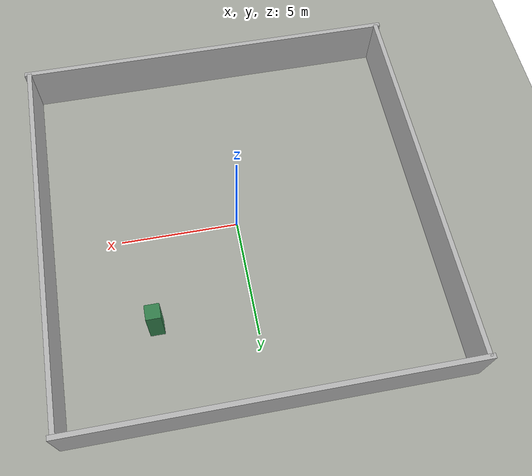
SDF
<?xml version="1.0"?>
<sdf version="1.6">
  <world name="bglx_concept_test">
    <gravity>0 0 -9.81</gravity>
    <physics name="ode" type="ode">
      <max_step_size>0.001</max_step_size><real_time_update_rate>1000</real_time_update_rate>
      <ode><solver><type>quick</type><iters>80</iters><sor>1.3</sor></solver></ode>
    </physics>
    <scene><ambient>0.55 0.55 0.55 1</ambient><background>0.75 0.80 0.85 1</background><shadows>true</shadows></scene>
    <light name="sun" type="directional"><pose>0 0 10 0 0 0</pose><diffuse>0.85 0.85 0.82 1</diffuse><specular>0.3 0.3 0.3 1</specular><direction>-0.4 -0.2 -1</direction><cast_shadows>true</cast_shadows></light>
    <model name="ground"><static>true</static><link name="ground">
      <collision name="ground"><geometry><plane><normal>0 0 1</normal><size>40 40</size></plane></geometry></collision>
      <visual name="ground"><geometry><plane><normal>0 0 1</normal><size>40 40</size></plane></geometry><material><ambient>0.65 0.66 0.63 1</ambient><diffuse>0.65 0.66 0.63 1</diffuse></material></visual>
    </link></model>
    <model name="north_wall"><static>true</static><pose>0 8 1.1 0 0 0</pose><link name="wall">
      <collision name="wall"><geometry><box><size>16.4 0.2 2.2</size></box></geometry></collision>
      <visual name="wall"><geometry><box><size>16.4 0.2 2.2</size></box></geometry></visual>
    </link></model>
    <model name="south_wall"><static>true</static><pose>0 -8 1.1 0 0 0</pose><link name="wall">
      <collision name="wall"><geometry><box><size>16.4 0.2 2.2</size></box></geometry></collision>
      <visual name="wall"><geometry><box><size>16.4 0.2 2.2</size></box></geometry></visual>
    </link></model>
    <model name="east_wall"><static>true</static><pose>8 0 1.1 0 0 0</pose><link name="wall">
      <collision name="wall"><geometry><box><size>0.2 16 2.2</size></box></geometry></collision>
      <visual name="wall"><geometry><box><size>0.2 16 2.2</size></box></geometry></visual>
    </link></model>
    <model name="west_wall"><static>true</static><pose>-8 0 1.1 0 0 0</pose><link name="wall">
      <collision name="wall"><geometry><box><size>0.2 16 2.2</size></box></geometry></collision>
      <visual name="wall"><geometry><box><size>0.2 16 2.2</size></box></geometry></visual>
    </link></model>
    <model name="landmark"><static>true</static><pose>4 4 1 0 0 0</pose><link name="post">
      <collision name="post"><geometry><box><size>0.6 0.6 2</size></box></geometry></collision>
      <visual name="post"><geometry><box><size>0.6 0.6 2</size></box></geometry><material><ambient>0.2 0.5 0.3 1</ambient><diffuse>0.2 0.5 0.3 1</diffuse></material></visual>
    </link></model>
    <gui><camera name="user_camera"><pose>3.2 -3.7 2.2 0 0.35 2.25</pose></camera></gui>
  </world>
</sdf>
